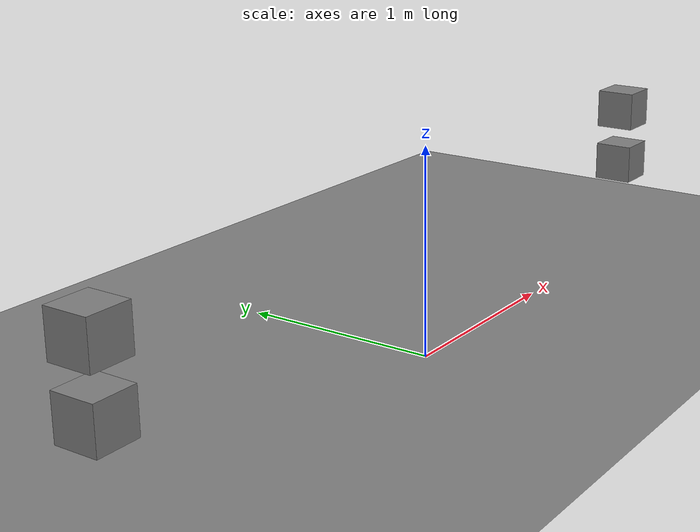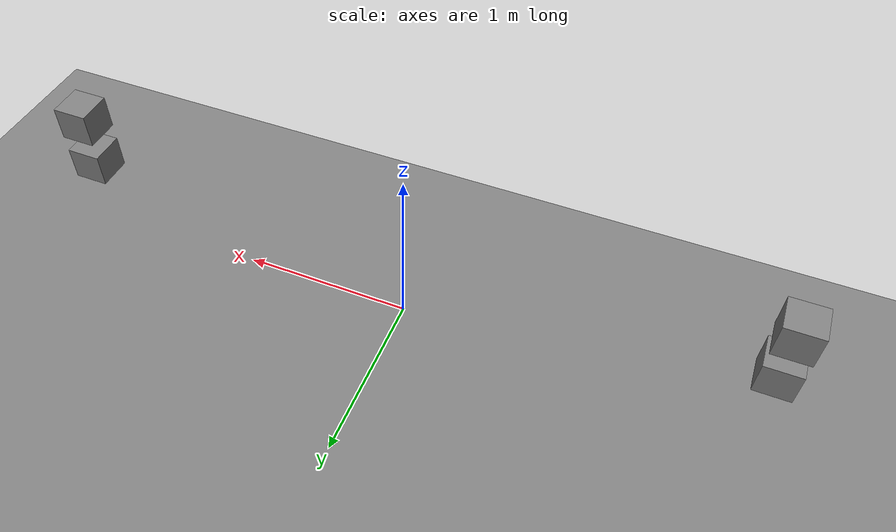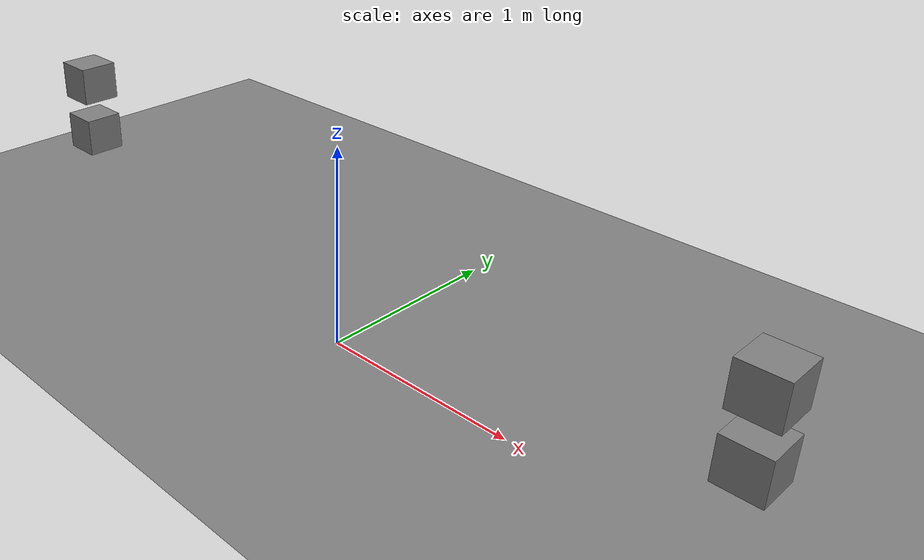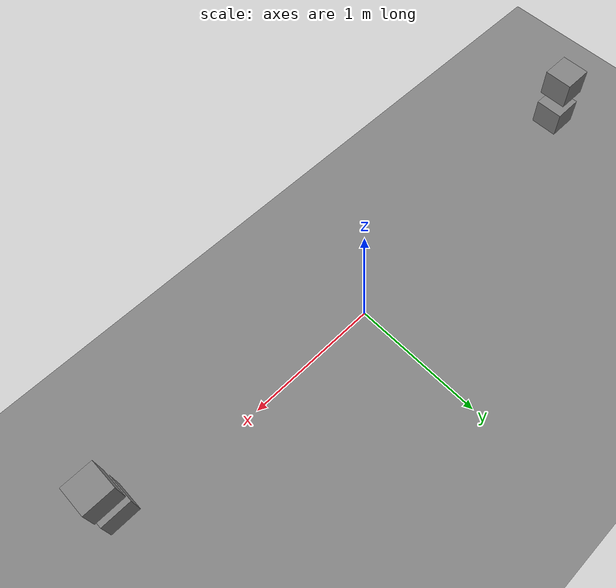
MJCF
<mujoco model="two_stacks">
  <option gravity="0 0 -9.81" timestep="0.002" sleep_tolerance="1e-6">
    <flag sleep="enable"/>
  </option>
  <worldbody>
    <geom type="plane" size="10 10 0.1" solref="0.005 1.5"/>
    <body name="a1" pos="-2 0 0.5">
      <freejoint/>
      <geom type="box" size="0.1 0.1 0.1" mass="1.0" solref="0.005 1.5"/>
    </body>
    <body name="a2" pos="-2 0 0.8">
      <freejoint/>
      <geom type="box" size="0.1 0.1 0.1" mass="1.0" solref="0.005 1.5"/>
    </body>
    <body name="b1" pos="2 0 0.5">
      <freejoint/>
      <geom type="box" size="0.1 0.1 0.1" mass="1.0" solref="0.005 1.5"/>
    </body>
    <body name="b2" pos="2 0 0.8">
      <freejoint/>
      <geom type="box" size="0.1 0.1 0.1" mass="1.0" solref="0.005 1.5"/>
    </body>
  </worldbody>
</mujoco>
